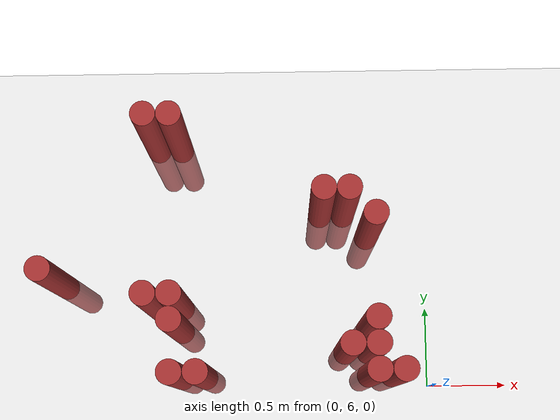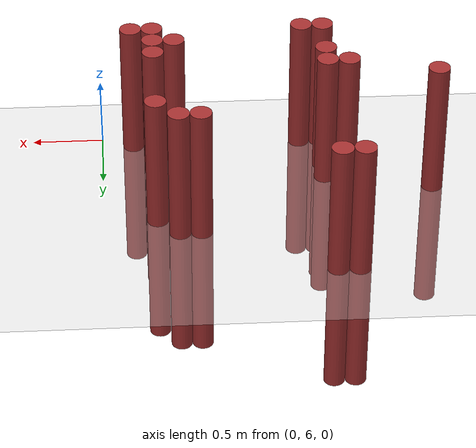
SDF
<sdf version="1.6">
 <world name="default">
  <model name="ground_plane">
   <static>1</static>
   <link name="link">
    <collision name="collision">
     <geometry><plane><normal>0 0 1</normal><size>100 100</size></plane></geometry>
     <surface><friction><ode><mu>100</mu><mu2>50</mu2></ode></friction></surface>
    </collision>
    <visual name="visual">
     <cast_shadows>0</cast_shadows>
     <geometry><plane><normal>0 0 1</normal><size>100 100</size></plane></geometry>
     <material>
      <script><uri>file://media/materials/scripts/gazebo.material</uri><name>Gazebo/Grey</name></script>
     </material>
    </visual>
   </link>
  </model>
  <model name="unit_cylinder_175">
   <static>1</static>
   <pose>-2.325000 6.675000 0.000000 0.000000 0.000000 0.000000</pose>
   <link name="link">
    <inertial>
     <mass>1</mass>
     <inertia><ixx>0.145833</ixx><ixy>0</ixy><ixz>0</ixz><iyy>0.145833</iyy><iyz>0</iyz><izz>0.125</izz></inertia>
    </inertial>
    <collision name="collision">
     <geometry><cylinder><radius>0.075000</radius><length>2</length></cylinder></geometry>
    </collision>
    <visual name="visual">
     <geometry><cylinder><radius>0.075000</radius><length>2</length></cylinder></geometry>
     <material>
      <ambient>0.648000 0.192000 0.192000 1</ambient>
      <diffuse>0.648000 0.192000 0.192000 1</diffuse>
     </material>
     <material>
      <script><name>Gazebo/Grey</name><uri>file://media/materials/scripts/gazebo.material</uri></script>
     </material>
    </visual>
   </link>
  </model>
  <model name="unit_cylinder_179">
   <static>1</static>
   <pose>-1.725000 6.525000 0.000000 0.000000 0.000000 0.000000</pose>
   <link name="link">
    <inertial>
     <mass>1</mass>
     <inertia><ixx>0.145833</ixx><ixy>0</ixy><ixz>0</ixz><iyy>0.145833</iyy><iyz>0</iyz><izz>0.125</izz></inertia>
    </inertial>
    <collision name="collision">
     <geometry><cylinder><radius>0.075000</radius><length>2</length></cylinder></geometry>
    </collision>
    <visual name="visual">
     <geometry><cylinder><radius>0.075000</radius><length>2</length></cylinder></geometry>
     <material>
      <ambient>0.648000 0.192000 0.192000 1</ambient>
      <diffuse>0.648000 0.192000 0.192000 1</diffuse>
     </material>
     <material>
      <script><name>Gazebo/Grey</name><uri>file://media/materials/scripts/gazebo.material</uri></script>
     </material>
    </visual>
   </link>
  </model>
  <model name="unit_cylinder_180">
   <static>1</static>
   <pose>-1.725000 7.575000 0.000000 0.000000 0.000000 0.000000</pose>
   <link name="link">
    <inertial>
     <mass>1</mass>
     <inertia><ixx>0.145833</ixx><ixy>0</ixy><ixz>0</ixz><iyy>0.145833</iyy><iyz>0</iyz><izz>0.125</izz></inertia>
    </inertial>
    <collision name="collision">
     <geometry><cylinder><radius>0.075000</radius><length>2</length></cylinder></geometry>
    </collision>
    <visual name="visual">
     <geometry><cylinder><radius>0.075000</radius><length>2</length></cylinder></geometry>
     <material>
      <ambient>0.648000 0.192000 0.192000 1</ambient>
      <diffuse>0.648000 0.192000 0.192000 1</diffuse>
     </material>
     <material>
      <script><name>Gazebo/Grey</name><uri>file://media/materials/scripts/gazebo.material</uri></script>
     </material>
    </visual>
   </link>
  </model>
  <model name="unit_cylinder_187">
   <static>1</static>
   <pose>-1.575000 6.075000 0.000000 0.000000 0.000000 0.000000</pose>
   <link name="link">
    <inertial>
     <mass>1</mass>
     <inertia><ixx>0.145833</ixx><ixy>0</ixy><ixz>0</ixz><iyy>0.145833</iyy><iyz>0</iyz><izz>0.125</izz></inertia>
    </inertial>
    <collision name="collision">
     <geometry><cylinder><radius>0.075000</radius><length>2</length></cylinder></geometry>
    </collision>
    <visual name="visual">
     <geometry><cylinder><radius>0.075000</radius><length>2</length></cylinder></geometry>
     <material>
      <ambient>0.648000 0.192000 0.192000 1</ambient>
      <diffuse>0.648000 0.192000 0.192000 1</diffuse>
     </material>
     <material>
      <script><name>Gazebo/Grey</name><uri>file://media/materials/scripts/gazebo.material</uri></script>
     </material>
    </visual>
   </link>
  </model>
  <model name="unit_cylinder_188">
   <static>1</static>
   <pose>-1.575000 6.375000 0.000000 0.000000 0.000000 0.000000</pose>
   <link name="link">
    <inertial>
     <mass>1</mass>
     <inertia><ixx>0.145833</ixx><ixy>0</ixy><ixz>0</ixz><iyy>0.145833</iyy><iyz>0</iyz><izz>0.125</izz></inertia>
    </inertial>
    <collision name="collision">
     <geometry><cylinder><radius>0.075000</radius><length>2</length></cylinder></geometry>
    </collision>
    <visual name="visual">
     <geometry><cylinder><radius>0.075000</radius><length>2</length></cylinder></geometry>
     <material>
      <ambient>0.648000 0.192000 0.192000 1</ambient>
      <diffuse>0.648000 0.192000 0.192000 1</diffuse>
     </material>
     <material>
      <script><name>Gazebo/Grey</name><uri>file://media/materials/scripts/gazebo.material</uri></script>
     </material>
    </visual>
   </link>
  </model>
  <model name="unit_cylinder_189">
   <static>1</static>
   <pose>-1.575000 6.525000 0.000000 0.000000 0.000000 0.000000</pose>
   <link name="link">
    <inertial>
     <mass>1</mass>
     <inertia><ixx>0.145833</ixx><ixy>0</ixy><ixz>0</ixz><iyy>0.145833</iyy><iyz>0</iyz><izz>0.125</izz></inertia>
    </inertial>
    <collision name="collision">
     <geometry><cylinder><radius>0.075000</radius><length>2</length></cylinder></geometry>
    </collision>
    <visual name="visual">
     <geometry><cylinder><radius>0.075000</radius><length>2</length></cylinder></geometry>
     <material>
      <ambient>0.648000 0.192000 0.192000 1</ambient>
      <diffuse>0.648000 0.192000 0.192000 1</diffuse>
     </material>
     <material>
      <script><name>Gazebo/Grey</name><uri>file://media/materials/scripts/gazebo.material</uri></script>
     </material>
    </visual>
   </link>
  </model>
  <model name="unit_cylinder_190">
   <static>1</static>
   <pose>-1.575000 7.575000 0.000000 0.000000 0.000000 0.000000</pose>
   <link name="link">
    <inertial>
     <mass>1</mass>
     <inertia><ixx>0.145833</ixx><ixy>0</ixy><ixz>0</ixz><iyy>0.145833</iyy><iyz>0</iyz><izz>0.125</izz></inertia>
    </inertial>
    <collision name="collision">
     <geometry><cylinder><radius>0.075000</radius><length>2</length></cylinder></geometry>
    </collision>
    <visual name="visual">
     <geometry><cylinder><radius>0.075000</radius><length>2</length></cylinder></geometry>
     <material>
      <ambient>0.648000 0.192000 0.192000 1</ambient>
      <diffuse>0.648000 0.192000 0.192000 1</diffuse>
     </material>
     <material>
      <script><name>Gazebo/Grey</name><uri>file://media/materials/scripts/gazebo.material</uri></script>
     </material>
    </visual>
   </link>
  </model>
  <model name="unit_cylinder_197">
   <static>1</static>
   <pose>-1.425000 6.075000 0.000000 0.000000 0.000000 0.000000</pose>
   <link name="link">
    <inertial>
     <mass>1</mass>
     <inertia><ixx>0.145833</ixx><ixy>0</ixy><ixz>0</ixz><iyy>0.145833</iyy><iyz>0</iyz><izz>0.125</izz></inertia>
    </inertial>
    <collision name="collision">
     <geometry><cylinder><radius>0.075000</radius><length>2</length></cylinder></geometry>
    </collision>
    <visual name="visual">
     <geometry><cylinder><radius>0.075000</radius><length>2</length></cylinder></geometry>
     <material>
      <ambient>0.648000 0.192000 0.192000 1</ambient>
      <diffuse>0.648000 0.192000 0.192000 1</diffuse>
     </material>
     <material>
      <script><name>Gazebo/Grey</name><uri>file://media/materials/scripts/gazebo.material</uri></script>
     </material>
    </visual>
   </link>
  </model>
  <model name="unit_cylinder_202">
   <static>1</static>
   <pose>-0.675000 7.125000 0.000000 0.000000 0.000000 0.000000</pose>
   <link name="link">
    <inertial>
     <mass>1</mass>
     <inertia><ixx>0.145833</ixx><ixy>0</ixy><ixz>0</ixz><iyy>0.145833</iyy><iyz>0</iyz><izz>0.125</izz></inertia>
    </inertial>
    <collision name="collision">
     <geometry><cylinder><radius>0.075000</radius><length>2</length></cylinder></geometry>
    </collision>
    <visual name="visual">
     <geometry><cylinder><radius>0.075000</radius><length>2</length></cylinder></geometry>
     <material>
      <ambient>0.648000 0.192000 0.192000 1</ambient>
      <diffuse>0.648000 0.192000 0.192000 1</diffuse>
     </material>
     <material>
      <script><name>Gazebo/Grey</name><uri>file://media/materials/scripts/gazebo.material</uri></script>
     </material>
    </visual>
   </link>
  </model>
  <model name="unit_cylinder_203">
   <static>1</static>
   <pose>-0.525000 6.225000 0.000000 0.000000 0.000000 0.000000</pose>
   <link name="link">
    <inertial>
     <mass>1</mass>
     <inertia><ixx>0.145833</ixx><ixy>0</ixy><ixz>0</ixz><iyy>0.145833</iyy><iyz>0</iyz><izz>0.125</izz></inertia>
    </inertial>
    <collision name="collision">
     <geometry><cylinder><radius>0.075000</radius><length>2</length></cylinder></geometry>
    </collision>
    <visual name="visual">
     <geometry><cylinder><radius>0.075000</radius><length>2</length></cylinder></geometry>
     <material>
      <ambient>0.648000 0.192000 0.192000 1</ambient>
      <diffuse>0.648000 0.192000 0.192000 1</diffuse>
     </material>
     <material>
      <script><name>Gazebo/Grey</name><uri>file://media/materials/scripts/gazebo.material</uri></script>
     </material>
    </visual>
   </link>
  </model>
  <model name="unit_cylinder_204">
   <static>1</static>
   <pose>-0.525000 7.125000 0.000000 0.000000 0.000000 0.000000</pose>
   <link name="link">
    <inertial>
     <mass>1</mass>
     <inertia><ixx>0.145833</ixx><ixy>0</ixy><ixz>0</ixz><iyy>0.145833</iyy><iyz>0</iyz><izz>0.125</izz></inertia>
    </inertial>
    <collision name="collision">
     <geometry><cylinder><radius>0.075000</radius><length>2</length></cylinder></geometry>
    </collision>
    <visual name="visual">
     <geometry><cylinder><radius>0.075000</radius><length>2</length></cylinder></geometry>
     <material>
      <ambient>0.648000 0.192000 0.192000 1</ambient>
      <diffuse>0.648000 0.192000 0.192000 1</diffuse>
     </material>
     <material>
      <script><name>Gazebo/Grey</name><uri>file://media/materials/scripts/gazebo.material</uri></script>
     </material>
    </visual>
   </link>
  </model>
  <model name="unit_cylinder_205">
   <static>1</static>
   <pose>-0.375000 6.075000 0.000000 0.000000 0.000000 0.000000</pose>
   <link name="link">
    <inertial>
     <mass>1</mass>
     <inertia><ixx>0.145833</ixx><ixy>0</ixy><ixz>0</ixz><iyy>0.145833</iyy><iyz>0</iyz><izz>0.125</izz></inertia>
    </inertial>
    <collision name="collision">
     <geometry><cylinder><radius>0.075000</radius><length>2</length></cylinder></geometry>
    </collision>
    <visual name="visual">
     <geometry><cylinder><radius>0.075000</radius><length>2</length></cylinder></geometry>
     <material>
      <ambient>0.648000 0.192000 0.192000 1</ambient>
      <diffuse>0.648000 0.192000 0.192000 1</diffuse>
     </material>
     <material>
      <script><name>Gazebo/Grey</name><uri>file://media/materials/scripts/gazebo.material</uri></script>
     </material>
    </visual>
   </link>
  </model>
  <model name="unit_cylinder_206">
   <static>1</static>
   <pose>-0.375000 6.225000 0.000000 0.000000 0.000000 0.000000</pose>
   <link name="link">
    <inertial>
     <mass>1</mass>
     <inertia><ixx>0.145833</ixx><ixy>0</ixy><ixz>0</ixz><iyy>0.145833</iyy><iyz>0</iyz><izz>0.125</izz></inertia>
    </inertial>
    <collision name="collision">
     <geometry><cylinder><radius>0.075000</radius><length>2</length></cylinder></geometry>
    </collision>
    <visual name="visual">
     <geometry><cylinder><radius>0.075000</radius><length>2</length></cylinder></geometry>
     <material>
      <ambient>0.648000 0.192000 0.192000 1</ambient>
      <diffuse>0.648000 0.192000 0.192000 1</diffuse>
     </material>
     <material>
      <script><name>Gazebo/Grey</name><uri>file://media/materials/scripts/gazebo.material</uri></script>
     </material>
    </visual>
   </link>
  </model>
  <model name="unit_cylinder_207">
   <static>1</static>
   <pose>-0.375000 6.375000 0.000000 0.000000 0.000000 0.000000</pose>
   <link name="link">
    <inertial>
     <mass>1</mass>
     <inertia><ixx>0.145833</ixx><ixy>0</ixy><ixz>0</ixz><iyy>0.145833</iyy><iyz>0</iyz><izz>0.125</izz></inertia>
    </inertial>
    <collision name="collision">
     <geometry><cylinder><radius>0.075000</radius><length>2</length></cylinder></geometry>
    </collision>
    <visual name="visual">
     <geometry><cylinder><radius>0.075000</radius><length>2</length></cylinder></geometry>
     <material>
      <ambient>0.648000 0.192000 0.192000 1</ambient>
      <diffuse>0.648000 0.192000 0.192000 1</diffuse>
     </material>
     <material>
      <script><name>Gazebo/Grey</name><uri>file://media/materials/scripts/gazebo.material</uri></script>
     </material>
    </visual>
   </link>
  </model>
  <model name="unit_cylinder_208">
   <static>1</static>
   <pose>-0.375000 6.975000 0.000000 0.000000 0.000000 0.000000</pose>
   <link name="link">
    <inertial>
     <mass>1</mass>
     <inertia><ixx>0.145833</ixx><ixy>0</ixy><ixz>0</ixz><iyy>0.145833</iyy><iyz>0</iyz><izz>0.125</izz></inertia>
    </inertial>
    <collision name="collision">
     <geometry><cylinder><radius>0.075000</radius><length>2</length></cylinder></geometry>
    </collision>
    <visual name="visual">
     <geometry><cylinder><radius>0.075000</radius><length>2</length></cylinder></geometry>
     <material>
      <ambient>0.648000 0.192000 0.192000 1</ambient>
      <diffuse>0.648000 0.192000 0.192000 1</diffuse>
     </material>
     <material>
      <script><name>Gazebo/Grey</name><uri>file://media/materials/scripts/gazebo.material</uri></script>
     </material>
    </visual>
   </link>
  </model>
  <model name="unit_cylinder_214">
   <static>1</static>
   <pose>-0.225000 6.075000 0.000000 0.000000 0.000000 0.000000</pose>
   <link name="link">
    <inertial>
     <mass>1</mass>
     <inertia><ixx>0.145833</ixx><ixy>0</ixy><ixz>0</ixz><iyy>0.145833</iyy><iyz>0</iyz><izz>0.125</izz></inertia>
    </inertial>
    <collision name="collision">
     <geometry><cylinder><radius>0.075000</radius><length>2</length></cylinder></geometry>
    </collision>
    <visual name="visual">
     <geometry><cylinder><radius>0.075000</radius><length>2</length></cylinder></geometry>
     <material>
      <ambient>0.648000 0.192000 0.192000 1</ambient>
      <diffuse>0.648000 0.192000 0.192000 1</diffuse>
     </material>
     <material>
      <script><name>Gazebo/Grey</name><uri>file://media/materials/scripts/gazebo.material</uri></script>
     </material>
    </visual>
   </link>
  </model>
 </world>
</sdf>
